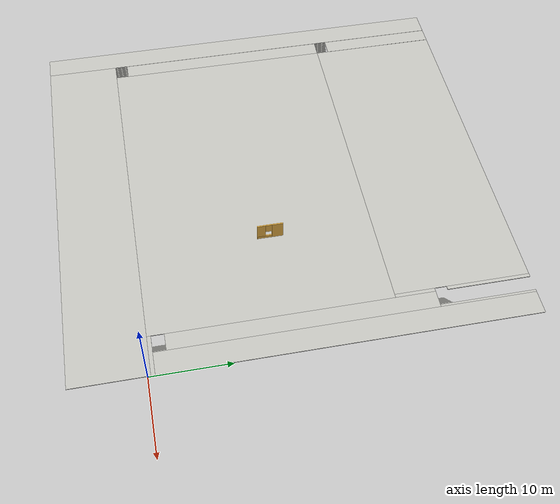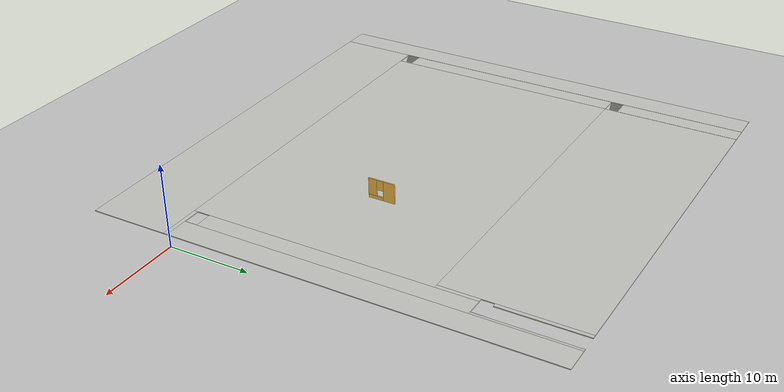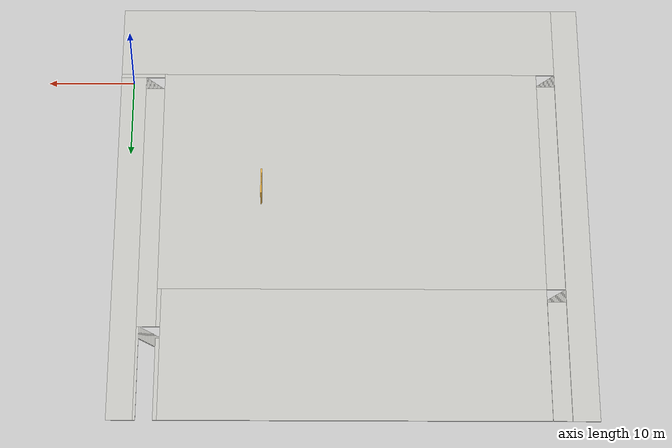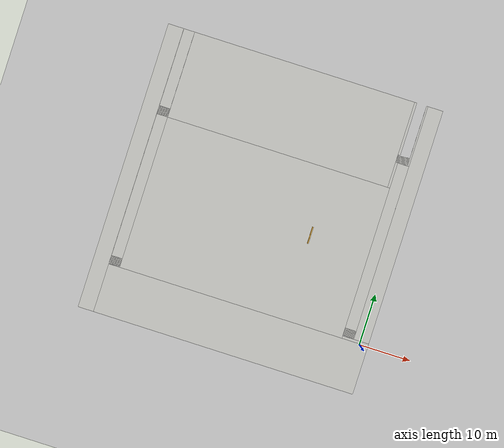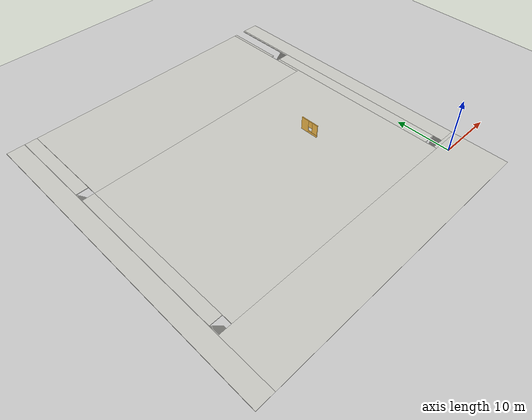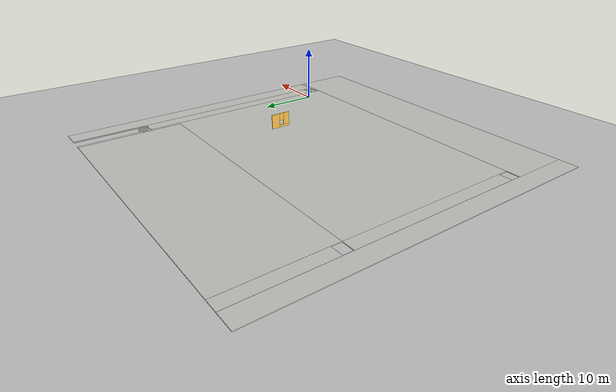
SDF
<sdf version="1.7">
 <world name="default">
  <model name="ground_plane">
   <static>1</static>
   <link name="link">
    <collision name="collision">
     <geometry><plane><normal>0 0 1</normal><size>100 100</size></plane></geometry>
     <surface>
      <contact><collide_bitmask>65535</collide_bitmask></contact>
      <friction><ode><mu>100</mu><mu2>50</mu2></ode></friction>
     </surface>
    </collision>
    <visual name="visual">
     <cast_shadows>0</cast_shadows>
     <geometry><plane><normal>0 0 1</normal><size>100 100</size></plane></geometry>
     <material>
      <script><uri>file://media/materials/scripts/gazebo.material</uri><name>Gazebo/Grey</name></script>
     </material>
    </visual>
   </link>
  </model>
  <model name="DepartmentBuilding">
   <pose>-25.6559 18.8293 0 0 -0 0</pose>
   <link name="Floor_2">
    <pose>-1e-06 -7.8e-05 2.5 0 -0 0</pose>
    <visual name="Floor_2_Visual_0">
     <pose>-25.4296 0 0.05 0 -0 0</pose>
     <geometry><box><size>3.02955 55.5283 0.1</size></box></geometry>
     <material>
      <script><uri>file://media/materials/scripts/gazebo.material</uri><name>Gazebo/CeilingTiled</name></script>
      <ambient>1 1 1 1</ambient>
     </material>
     <meta><layer>1</layer></meta>
    </visual>
    <collision name="Floor_2_Collision_0">
     <geometry><box><size>3.02955 55.5283 0.1</size></box></geometry>
     <pose>-25.4296 0 0.05 0 -0 0</pose>
    </collision>
    <visual name="Floor_2_Visual_1">
     <pose>1.51477 -23.0785 0.05 0 -0 0</pose>
     <geometry><box><size>50.8593 9.37122 0.1</size></box></geometry>
     <material>
      <script><uri>file://media/materials/scripts/gazebo.material</uri><name>Gazebo/CeilingTiled</name></script>
      <ambient>1 1 1 1</ambient>
     </material>
     <meta><layer>1</layer></meta>
    </visual>
    <collision name="Floor_2_Collision_1">
     <geometry><box><size>50.8593 9.37122 0.1</size></box></geometry>
     <pose>1.51477 -23.0785 0.05 0 -0 0</pose>
    </collision>
    <visual name="Floor_2_Visual_2">
     <pose>0.030895 -3.65943 0.05 0 -0 0</pose>
     <geometry><box><size>43.6115 29.467 0.1</size></box></geometry>
     <material>
      <script><uri>file://media/materials/scripts/gazebo.material</uri><name>Gazebo/CeilingTiled</name></script>
      <ambient>1 1 1 1</ambient>
     </material>
     <meta><layer>1</layer></meta>
    </visual>
    <collision name="Floor_2_Collision_2">
     <geometry><box><size>43.6115 29.467 0.1</size></box></geometry>
     <pose>0.030895 -3.65943 0.05 0 -0 0</pose>
    </collision>
    <visual name="Floor_2_Visual_3">
     <pose>24.3905 -18.149 0.05 0 -0 0</pose>
     <geometry><box><size>5.10775 0.487854 0.1</size></box></geometry>
     <material>
      <script><uri>file://media/materials/scripts/gazebo.material</uri><name>Gazebo/CeilingTiled</name></script>
      <ambient>1 1 1 1</ambient>
     </material>
     <meta><layer>1</layer></meta>
    </visual>
    <collision name="Floor_2_Collision_3">
     <geometry><box><size>5.10775 0.487854 0.1</size></box></geometry>
     <pose>24.3905 -18.149 0.05 0 -0 0</pose>
    </collision>
    <visual name="Floor_2_Visual_4">
     <pose>25.4813 4.92953 0.05 0 -0 0</pose>
     <geometry><box><size>2.9262 45.6692 0.1</size></box></geometry>
     <material>
      <script><uri>file://media/materials/scripts/gazebo.material</uri><name>Gazebo/CeilingTiled</name></script>
      <ambient>1 1 1 1</ambient>
     </material>
     <meta><layer>1</layer></meta>
    </visual>
    <collision name="Floor_2_Collision_4">
     <geometry><box><size>2.9262 45.6692 0.1</size></box></geometry>
     <pose>25.4813 4.92953 0.05 0 -0 0</pose>
    </collision>
    <visual name="Floor_2_Visual_5">
     <pose>-23.8968 5.51561 0.05 0 -0 0</pose>
     <geometry><box><size>0.036097 44.4971 0.1</size></box></geometry>
     <material>
      <script><uri>file://media/materials/scripts/gazebo.material</uri><name>Gazebo/CeilingTiled</name></script>
      <ambient>1 1 1 1</ambient>
     </material>
     <meta><layer>1</layer></meta>
    </visual>
    <collision name="Floor_2_Collision_5">
     <geometry><box><size>0.036097 44.4971 0.1</size></box></geometry>
     <pose>-23.8968 5.51561 0.05 0 -0 0</pose>
    </collision>
    <visual name="Floor_2_Visual_6">
     <pose>-22.8268 -2.82943 0.05 0 -0 0</pose>
     <geometry><box><size>2.1039 27.807 0.1</size></box></geometry>
     <material>
      <script><uri>file://media/materials/scripts/gazebo.material</uri><name>Gazebo/CeilingTiled</name></script>
      <ambient>1 1 1 1</ambient>
     </material>
     <meta><layer>1</layer></meta>
    </visual>
    <collision name="Floor_2_Collision_6">
     <geometry><box><size>2.1039 27.807 0.1</size></box></geometry>
     <pose>-22.8268 -2.82943 0.05 0 -0 0</pose>
    </collision>
    <visual name="Floor_2_Visual_7">
     <pose>22.9274 -0.181225 0.05 0 -0 0</pose>
     <geometry><box><size>2.18155 32.3374 0.1</size></box></geometry>
     <material>
      <script><uri>file://media/materials/scripts/gazebo.material</uri><name>Gazebo/CeilingTiled</name></script>
      <ambient>1 1 1 1</ambient>
     </material>
     <meta><layer>1</layer></meta>
    </visual>
    <collision name="Floor_2_Collision_7">
     <geometry><box><size>2.18155 32.3374 0.1</size></box></geometry>
     <pose>22.9274 -0.181225 0.05 0 -0 0</pose>
    </collision>
    <visual name="Floor_2_Visual_8">
     <pose>-0.185707 19.4191 0.05 0 -0 0</pose>
     <geometry><box><size>43.1392 16.6901 0.1</size></box></geometry>
     <material>
      <script><uri>file://media/materials/scripts/gazebo.material</uri><name>Gazebo/CeilingTiled</name></script>
      <ambient>1 1 1 1</ambient>
     </material>
     <meta><layer>1</layer></meta>
    </visual>
    <collision name="Floor_2_Collision_8">
     <geometry><box><size>43.1392 16.6901 0.1</size></box></geometry>
     <pose>-0.185707 19.4191 0.05 0 -0 0</pose>
    </collision>
    <visual name="Floor_2_Visual_9">
     <pose>21.6103 13.5308 0.05 0 -0 0</pose>
     <geometry><box><size>0.452741 4.91341 0.1</size></box></geometry>
     <material>
      <script><uri>file://media/materials/scripts/gazebo.material</uri><name>Gazebo/CeilingTiled</name></script>
      <ambient>1 1 1 1</ambient>
     </material>
     <meta><layer>1</layer></meta>
    </visual>
    <collision name="Floor_2_Collision_9">
     <geometry><box><size>0.452741 4.91341 0.1</size></box></geometry>
     <pose>21.6103 13.5308 0.05 0 -0 0</pose>
    </collision>
    <visual name="Floor_2_Visual_10">
     <pose>-22.8268 20.225 0.05 0 -0 0</pose>
     <geometry><box><size>2.1039 15.0783 0.1</size></box></geometry>
     <material>
      <script><uri>file://media/materials/scripts/gazebo.material</uri><name>Gazebo/CeilingTiled</name></script>
      <ambient>1 1 1 1</ambient>
     </material>
     <meta><layer>1</layer></meta>
    </visual>
    <collision name="Floor_2_Collision_10">
     <geometry><box><size>2.1039 15.0783 0.1</size></box></geometry>
     <pose>-22.8268 20.225 0.05 0 -0 0</pose>
    </collision>
    <visual name="Floor_2_Visual_11">
     <pose>23.8698 21.8758 0.05 0 -0 0</pose>
     <geometry><box><size>0.296725 11.7767 0.1</size></box></geometry>
     <material>
      <script><uri>file://media/materials/scripts/gazebo.material</uri><name>Gazebo/CeilingTiled</name></script>
      <ambient>1 1 1 1</ambient>
     </material>
     <meta><layer>1</layer></meta>
    </visual>
    <collision name="Floor_2_Collision_11">
     <geometry><box><size>0.296725 11.7767 0.1</size></box></geometry>
     <pose>23.8698 21.8758 0.05 0 -0 0</pose>
    </collision>
    <visual name="Floor_2_Visual_12">
     <pose>21.6103 22.6205 0.05 0 -0 0</pose>
     <geometry><box><size>0.452741 10.2872 0.1</size></box></geometry>
     <material>
      <script><uri>file://media/materials/scripts/gazebo.material</uri><name>Gazebo/CeilingTiled</name></script>
      <ambient>1 1 1 1</ambient>
     </material>
     <meta><layer>1</layer></meta>
    </visual>
    <collision name="Floor_2_Collision_12">
     <geometry><box><size>0.452741 10.2872 0.1</size></box></geometry>
     <pose>21.6103 22.6205 0.05 0 -0 0</pose>
    </collision>
   </link>
   <link name="Stairs_0">
    <visual name="Stairs_0_Visual_0">
     <pose>21.9094 -17.1276 0.083333 0 -0 1.5708</pose>
     <geometry><box><size>1.55513 0.145437 0.166667</size></box></geometry>
     <material>
      <script><uri>file://media/materials/scripts/gazebo.material</uri><name>Gazebo/CeilingTiled</name></script>
      <ambient>1 1 1 1</ambient>
     </material>
     <meta><layer>0</layer></meta>
    </visual>
    <collision name="Stairs_0_Collision_0">
     <geometry><box><size>1.55513 0.145437 0.166667</size></box></geometry>
     <pose>21.9094 -17.1276 0.083333 0 -0 1.5708</pose>
    </collision>
    <visual name="Stairs_0_Visual_1">
     <pose>22.0548 -17.1276 0.25 0 -0 1.5708</pose>
     <geometry><box><size>1.55513 0.145437 0.166667</size></box></geometry>
     <material>
      <script><uri>file://media/materials/scripts/gazebo.material</uri><name>Gazebo/CeilingTiled</name></script>
      <ambient>1 1 1 1</ambient>
     </material>
     <meta><layer>0</layer></meta>
    </visual>
    <collision name="Stairs_0_Collision_1">
     <geometry><box><size>1.55513 0.145437 0.166667</size></box></geometry>
     <pose>22.0548 -17.1276 0.25 0 -0 1.5708</pose>
    </collision>
    <visual name="Stairs_0_Visual_2">
     <pose>22.2002 -17.1276 0.416667 0 -0 1.5708</pose>
     <geometry><box><size>1.55513 0.145437 0.166667</size></box></geometry>
     <material>
      <script><uri>file://media/materials/scripts/gazebo.material</uri><name>Gazebo/CeilingTiled</name></script>
      <ambient>1 1 1 1</ambient>
     </material>
     <meta><layer>0</layer></meta>
    </visual>
    <collision name="Stairs_0_Collision_2">
     <geometry><box><size>1.55513 0.145437 0.166667</size></box></geometry>
     <pose>22.2002 -17.1276 0.416667 0 -0 1.5708</pose>
    </collision>
    <visual name="Stairs_0_Visual_3">
     <pose>22.3457 -17.1276 0.583333 0 -0 1.5708</pose>
     <geometry><box><size>1.55513 0.145437 0.166667</size></box></geometry>
     <material>
      <script><uri>file://media/materials/scripts/gazebo.material</uri><name>Gazebo/CeilingTiled</name></script>
      <ambient>1 1 1 1</ambient>
     </material>
     <meta><layer>0</layer></meta>
    </visual>
    <collision name="Stairs_0_Collision_3">
     <geometry><box><size>1.55513 0.145437 0.166667</size></box></geometry>
     <pose>22.3457 -17.1276 0.583333 0 -0 1.5708</pose>
    </collision>
    <visual name="Stairs_0_Visual_4">
     <pose>22.4911 -17.1276 0.75 0 -0 1.5708</pose>
     <geometry><box><size>1.55513 0.145437 0.166667</size></box></geometry>
     <material>
      <script><uri>file://media/materials/scripts/gazebo.material</uri><name>Gazebo/CeilingTiled</name></script>
      <ambient>1 1 1 1</ambient>
     </material>
     <meta><layer>0</layer></meta>
    </visual>
    <collision name="Stairs_0_Collision_4">
     <geometry><box><size>1.55513 0.145437 0.166667</size></box></geometry>
     <pose>22.4911 -17.1276 0.75 0 -0 1.5708</pose>
    </collision>
    <visual name="Stairs_0_Visual_5">
     <pose>22.6366 -17.1276 0.916667 0 -0 1.5708</pose>
     <geometry><box><size>1.55513 0.145437 0.166667</size></box></geometry>
     <material>
      <script><uri>file://media/materials/scripts/gazebo.material</uri><name>Gazebo/CeilingTiled</name></script>
      <ambient>1 1 1 1</ambient>
     </material>
     <meta><layer>0</layer></meta>
    </visual>
    <collision name="Stairs_0_Collision_5">
     <geometry><box><size>1.55513 0.145437 0.166667</size></box></geometry>
     <pose>22.6366 -17.1276 0.916667 0 -0 1.5708</pose>
    </collision>
    <visual name="Stairs_0_Visual_6">
     <pose>22.782 -17.1276 1.08333 0 -0 1.5708</pose>
     <geometry><box><size>1.55513 0.145437 0.166667</size></box></geometry>
     <material>
      <script><uri>file://media/materials/scripts/gazebo.material</uri><name>Gazebo/CeilingTiled</name></script>
      <ambient>1 1 1 1</ambient>
     </material>
     <meta><layer>0</layer></meta>
    </visual>
    <collision name="Stairs_0_Collision_6">
     <geometry><box><size>1.55513 0.145437 0.166667</size></box></geometry>
     <pose>22.782 -17.1276 1.08333 0 -0 1.5708</pose>
    </collision>
    <visual name="Stairs_0_Visual_7">
     <pose>22.9274 -17.1276 1.25 0 -0 1.5708</pose>
     <geometry><box><size>1.55513 0.145437 0.166667</size></box></geometry>
     <material>
      <script><uri>file://media/materials/scripts/gazebo.material</uri><name>Gazebo/CeilingTiled</name></script>
      <ambient>1 1 1 1</ambient>
     </material>
     <meta><layer>0</layer></meta>
    </visual>
    <collision name="Stairs_0_Collision_7">
     <geometry><box><size>1.55513 0.145437 0.166667</size></box></geometry>
     <pose>22.9274 -17.1276 1.25 0 -0 1.5708</pose>
    </collision>
    <visual name="Stairs_0_Visual_8">
     <pose>23.0729 -17.1276 1.41667 0 -0 1.5708</pose>
     <geometry><box><size>1.55513 0.145437 0.166667</size></box></geometry>
     <material>
      <script><uri>file://media/materials/scripts/gazebo.material</uri><name>Gazebo/CeilingTiled</name></script>
      <ambient>1 1 1 1</ambient>
     </material>
     <meta><layer>0</layer></meta>
    </visual>
    <collision name="Stairs_0_Collision_8">
     <geometry><box><size>1.55513 0.145437 0.166667</size></box></geometry>
     <pose>23.0729 -17.1276 1.41667 0 -0 1.5708</pose>
    </collision>
    <visual name="Stairs_0_Visual_9">
     <pose>23.2183 -17.1276 1.58333 0 -0 1.5708</pose>
     <geometry><box><size>1.55513 0.145437 0.166667</size></box></geometry>
     <material>
      <script><uri>file://media/materials/scripts/gazebo.material</uri><name>Gazebo/CeilingTiled</name></script>
      <ambient>1 1 1 1</ambient>
     </material>
     <meta><layer>0</layer></meta>
    </visual>
    <collision name="Stairs_0_Collision_9">
     <geometry><box><size>1.55513 0.145437 0.166667</size></box></geometry>
     <pose>23.2183 -17.1276 1.58333 0 -0 1.5708</pose>
    </collision>
    <visual name="Stairs_0_Visual_10">
     <pose>23.3637 -17.1276 1.75 0 -0 1.5708</pose>
     <geometry><box><size>1.55513 0.145437 0.166667</size></box></geometry>
     <material>
      <script><uri>file://media/materials/scripts/gazebo.material</uri><name>Gazebo/CeilingTiled</name></script>
      <ambient>1 1 1 1</ambient>
     </material>
     <meta><layer>0</layer></meta>
    </visual>
    <collision name="Stairs_0_Collision_10">
     <geometry><box><size>1.55513 0.145437 0.166667</size></box></geometry>
     <pose>23.3637 -17.1276 1.75 0 -0 1.5708</pose>
    </collision>
    <visual name="Stairs_0_Visual_11">
     <pose>23.5092 -17.1276 1.91667 0 -0 1.5708</pose>
     <geometry><box><size>1.55513 0.145437 0.166667</size></box></geometry>
     <material>
      <script><uri>file://media/materials/scripts/gazebo.material</uri><name>Gazebo/CeilingTiled</name></script>
      <ambient>1 1 1 1</ambient>
     </material>
     <meta><layer>0</layer></meta>
    </visual>
    <collision name="Stairs_0_Collision_11">
     <geometry><box><size>1.55513 0.145437 0.166667</size></box></geometry>
     <pose>23.5092 -17.1276 1.91667 0 -0 1.5708</pose>
    </collision>
    <visual name="Stairs_0_Visual_12">
     <pose>23.6546 -17.1276 2.08333 0 -0 1.5708</pose>
     <geometry><box><size>1.55513 0.145437 0.166667</size></box></geometry>
     <material>
      <script><uri>file://media/materials/scripts/gazebo.material</uri><name>Gazebo/CeilingTiled</name></script>
      <ambient>1 1 1 1</ambient>
     </material>
     <meta><layer>0</layer></meta>
    </visual>
    <collision name="Stairs_0_Collision_12">
     <geometry><box><size>1.55513 0.145437 0.166667</size></box></geometry>
     <pose>23.6546 -17.1276 2.08333 0 -0 1.5708</pose>
    </collision>
    <visual name="Stairs_0_Visual_13">
     <pose>23.8001 -17.1276 2.25 0 -0 1.5708</pose>
     <geometry><box><size>1.55513 0.145437 0.166667</size></box></geometry>
     <material>
      <script><uri>file://media/materials/scripts/gazebo.material</uri><name>Gazebo/CeilingTiled</name></script>
      <ambient>1 1 1 1</ambient>
     </material>
     <meta><layer>0</layer></meta>
    </visual>
    <collision name="Stairs_0_Collision_13">
     <geometry><box><size>1.55513 0.145437 0.166667</size></box></geometry>
     <pose>23.8001 -17.1276 2.25 0 -0 1.5708</pose>
    </collision>
    <visual name="Stairs_0_Visual_14">
     <pose>23.9455 -17.1276 2.41667 0 -0 1.5708</pose>
     <geometry><box><size>1.55513 0.145437 0.166667</size></box></geometry>
     <material>
      <script><uri>file://media/materials/scripts/gazebo.material</uri><name>Gazebo/CeilingTiled</name></script>
      <ambient>1 1 1 1</ambient>
     </material>
     <meta><layer>0</layer></meta>
    </visual>
    <collision name="Stairs_0_Collision_14">
     <geometry><box><size>1.55513 0.145437 0.166667</size></box></geometry>
     <pose>23.9455 -17.1276 2.41667 0 -0 1.5708</pose>
    </collision>
   </link>
   <link name="Stairs_1">
    <visual name="Stairs_1_Visual_0">
     <pose>21.4618 16.7321 0.083333 0 -0 1.5708</pose>
     <geometry><box><size>1.48944 0.155838 0.166667</size></box></geometry>
     <material>
      <script><uri>file://media/materials/scripts/gazebo.material</uri><name>Gazebo/CeilingTiled</name></script>
      <ambient>1 1 1 1</ambient>
     </material>
     <meta><layer>0</layer></meta>
    </visual>
    <collision name="Stairs_1_Collision_0">
     <geometry><box><size>1.48944 0.155838 0.166667</size></box></geometry>
     <pose>21.4618 16.7321 0.083333 0 -0 1.5708</pose>
    </collision>
    <visual name="Stairs_1_Visual_1">
     <pose>21.6177 16.7321 0.25 0 -0 1.5708</pose>
     <geometry><box><size>1.48944 0.155838 0.166667</size></box></geometry>
     <material>
      <script><uri>file://media/materials/scripts/gazebo.material</uri><name>Gazebo/CeilingTiled</name></script>
      <ambient>1 1 1 1</ambient>
     </material>
     <meta><layer>0</layer></meta>
    </visual>
    <collision name="Stairs_1_Collision_1">
     <geometry><box><size>1.48944 0.155838 0.166667</size></box></geometry>
     <pose>21.6177 16.7321 0.25 0 -0 1.5708</pose>
    </collision>
    <visual name="Stairs_1_Visual_2">
     <pose>21.7735 16.7321 0.416667 0 -0 1.5708</pose>
     <geometry><box><size>1.48944 0.155838 0.166667</size></box></geometry>
     <material>
      <script><uri>file://media/materials/scripts/gazebo.material</uri><name>Gazebo/CeilingTiled</name></script>
      <ambient>1 1 1 1</ambient>
     </material>
     <meta><layer>0</layer></meta>
    </visual>
    <collision name="Stairs_1_Collision_2">
     <geometry><box><size>1.48944 0.155838 0.166667</size></box></geometry>
     <pose>21.7735 16.7321 0.416667 0 -0 1.5708</pose>
    </collision>
    <visual name="Stairs_1_Visual_3">
     <pose>21.9293 16.7321 0.583333 0 -0 1.5708</pose>
     <geometry><box><size>1.48944 0.155838 0.166667</size></box></geometry>
     <material>
      <script><uri>file://media/materials/scripts/gazebo.material</uri><name>Gazebo/CeilingTiled</name></script>
      <ambient>1 1 1 1</ambient>
     </material>
     <meta><layer>0</layer></meta>
    </visual>
    <collision name="Stairs_1_Collision_3">
     <geometry><box><size>1.48944 0.155838 0.166667</size></box></geometry>
     <pose>21.9293 16.7321 0.583333 0 -0 1.5708</pose>
    </collision>
    <visual name="Stairs_1_Visual_4">
     <pose>22.0852 16.7321 0.75 0 -0 1.5708</pose>
     <geometry><box><size>1.48944 0.155838 0.166667</size></box></geometry>
     <material>
      <script><uri>file://media/materials/scripts/gazebo.material</uri><name>Gazebo/CeilingTiled</name></script>
      <ambient>1 1 1 1</ambient>
     </material>
     <meta><layer>0</layer></meta>
    </visual>
    <collision name="Stairs_1_Collision_4">
     <geometry><box><size>1.48944 0.155838 0.166667</size></box></geometry>
     <pose>22.0852 16.7321 0.75 0 -0 1.5708</pose>
    </collision>
    <visual name="Stairs_1_Visual_5">
     <pose>22.241 16.7321 0.916667 0 -0 1.5708</pose>
     <geometry><box><size>1.48944 0.155838 0.166667</size></box></geometry>
     <material>
      <script><uri>file://media/materials/scripts/gazebo.material</uri><name>Gazebo/CeilingTiled</name></script>
      <ambient>1 1 1 1</ambient>
     </material>
     <meta><layer>0</layer></meta>
    </visual>
    <collision name="Stairs_1_Collision_5">
     <geometry><box><size>1.48944 0.155838 0.166667</size></box></geometry>
     <pose>22.241 16.7321 0.916667 0 -0 1.5708</pose>
    </collision>
    <visual name="Stairs_1_Visual_6">
     <pose>22.3969 16.7321 1.08333 0 -0 1.5708</pose>
     <geometry><box><size>1.48944 0.155838 0.166667</size></box></geometry>
     <material>
      <script><uri>file://media/materials/scripts/gazebo.material</uri><name>Gazebo/CeilingTiled</name></script>
      <ambient>1 1 1 1</ambient>
     </material>
     <meta><layer>0</layer></meta>
    </visual>
    <collision name="Stairs_1_Collision_6">
     <geometry><box><size>1.48944 0.155838 0.166667</size></box></geometry>
     <pose>22.3969 16.7321 1.08333 0 -0 1.5708</pose>
    </collision>
    <visual name="Stairs_1_Visual_7">
     <pose>22.5527 16.7321 1.25 0 -0 1.5708</pose>
     <geometry><box><size>1.48944 0.155838 0.166667</size></box></geometry>
     <material>
      <script><uri>file://media/materials/scripts/gazebo.material</uri><name>Gazebo/CeilingTiled</name></script>
      <ambient>1 1 1 1</ambient>
     </material>
     <meta><layer>0</layer></meta>
    </visual>
    <collision name="Stairs_1_Collision_7">
     <geometry><box><size>1.48944 0.155838 0.166667</size></box></geometry>
     <pose>22.5527 16.7321 1.25 0 -0 1.5708</pose>
    </collision>
    <visual name="Stairs_1_Visual_8">
     <pose>22.7085 16.7321 1.41667 0 -0 1.5708</pose>
     <geometry><box><size>1.48944 0.155838 0.166667</size></box></geometry>
     <material>
      <script><uri>file://media/materials/scripts/gazebo.material</uri><name>Gazebo/CeilingTiled</name></script>
      <ambient>1 1 1 1</ambient>
     </material>
     <meta><layer>0</layer></meta>
    </visual>
    <collision name="Stairs_1_Collision_8">
     <geometry><box><size>1.48944 0.155838 0.166667</size></box></geometry>
     <pose>22.7085 16.7321 1.41667 0 -0 1.5708</pose>
    </collision>
    <visual name="Stairs_1_Visual_9">
     <pose>22.8644 16.7321 1.58333 0 -0 1.5708</pose>
     <geometry><box><size>1.48944 0.155838 0.166667</size></box></geometry>
     <material>
      <script><uri>file://media/materials/scripts/gazebo.material</uri><name>Gazebo/CeilingTiled</name></script>
      <ambient>1 1 1 1</ambient>
     </material>
     <meta><layer>0</layer></meta>
    </visual>
    <collision name="Stairs_1_Collision_9">
     <geometry><box><size>1.48944 0.155838 0.166667</size></box></geometry>
     <pose>22.8644 16.7321 1.58333 0 -0 1.5708</pose>
    </collision>
    <visual name="Stairs_1_Visual_10">
     <pose>23.0202 16.7321 1.75 0 -0 1.5708</pose>
     <geometry><box><size>1.48944 0.155838 0.166667</size></box></geometry>
     <material>
      <script><uri>file://media/materials/scripts/gazebo.material</uri><name>Gazebo/CeilingTiled</name></script>
      <ambient>1 1 1 1</ambient>
     </material>
     <meta><layer>0</layer></meta>
    </visual>
    <collision name="Stairs_1_Collision_10">
     <geometry><box><size>1.48944 0.155838 0.166667</size></box></geometry>
     <pose>23.0202 16.7321 1.75 0 -0 1.5708</pose>
    </collision>
    <visual name="Stairs_1_Visual_11">
     <pose>23.1761 16.7321 1.91667 0 -0 1.5708</pose>
     <geometry><box><size>1.48944 0.155838 0.166667</size></box></geometry>
     <material>
      <script><uri>file://media/materials/scripts/gazebo.material</uri><name>Gazebo/CeilingTiled</name></script>
      <ambient>1 1 1 1</ambient>
     </material>
     <meta><layer>0</layer></meta>
    </visual>
    <collision name="Stairs_1_Collision_11">
     <geometry><box><size>1.48944 0.155838 0.166667</size></box></geometry>
     <pose>23.1761 16.7321 1.91667 0 -0 1.5708</pose>
    </collision>
    <visual name="Stairs_1_Visual_12">
     <pose>23.3319 16.7321 2.08333 0 -0 1.5708</pose>
     <geometry><box><size>1.48944 0.155838 0.166667</size></box></geometry>
     <material>
      <script><uri>file://media/materials/scripts/gazebo.material</uri><name>Gazebo/CeilingTiled</name></script>
      <ambient>1 1 1 1</ambient>
     </material>
     <meta><layer>0</layer></meta>
    </visual>
    <collision name="Stairs_1_Collision_12">
     <geometry><box><size>1.48944 0.155838 0.166667</size></box></geometry>
     <pose>23.3319 16.7321 2.08333 0 -0 1.5708</pose>
    </collision>
    <visual name="Stairs_1_Visual_13">
     <pose>23.4877 16.7321 2.25 0 -0 1.5708</pose>
     <geometry><box><size>1.48944 0.155838 0.166667</size></box></geometry>
     <material>
      <script><uri>file://media/materials/scripts/gazebo.material</uri><name>Gazebo/CeilingTiled</name></script>
      <ambient>1 1 1 1</ambient>
     </material>
     <meta><layer>0</layer></meta>
    </visual>
    <collision name="Stairs_1_Collision_13">
     <geometry><box><size>1.48944 0.155838 0.166667</size></box></geometry>
     <pose>23.4877 16.7321 2.25 0 -0 1.5708</pose>
    </collision>
    <visual name="Stairs_1_Visual_14">
     <pose>23.6436 16.7321 2.41667 0 -0 1.5708</pose>
     <geometry><box><size>1.48944 0.155838 0.166667</size></box></geometry>
     <material>
      <script><uri>file://media/materials/scripts/gazebo.material</uri><name>Gazebo/CeilingTiled</name></script>
      <ambient>1 1 1 1</ambient>
     </material>
     <meta><layer>0</layer></meta>
    </visual>
    <collision name="Stairs_1_Collision_14">
     <geometry><box><size>1.48944 0.155838 0.166667</size></box></geometry>
     <pose>23.6436 16.7321 2.41667 0 -0 1.5708</pose>
    </collision>
   </link>
   <link name="Stairs_2">
    <visual name="Stairs_2_Visual_0">
     <pose>-21.8261 11.8799 0.083333 0 -0 -1.5708</pose>
     <geometry><box><size>1.6118 0.141563 0.166667</size></box></geometry>
     <material>
      <script><uri>file://media/materials/scripts/gazebo.material</uri><name>Gazebo/CeilingTiled</name></script>
      <ambient>1 1 1 1</ambient>
     </material>
     <meta><layer>0</layer></meta>
    </visual>
    <collision name="Stairs_2_Collision_0">
     <geometry><box><size>1.6118 0.141563 0.166667</size></box></geometry>
     <pose>-21.8261 11.8799 0.083333 0 -0 -1.5708</pose>
    </collision>
    <visual name="Stairs_2_Visual_1">
     <pose>-21.9677 11.8799 0.25 0 -0 -1.5708</pose>
     <geometry><box><size>1.6118 0.141563 0.166667</size></box></geometry>
     <material>
      <script><uri>file://media/materials/scripts/gazebo.material</uri><name>Gazebo/CeilingTiled</name></script>
      <ambient>1 1 1 1</ambient>
     </material>
     <meta><layer>0</layer></meta>
    </visual>
    <collision name="Stairs_2_Collision_1">
     <geometry><box><size>1.6118 0.141563 0.166667</size></box></geometry>
     <pose>-21.9677 11.8799 0.25 0 -0 -1.5708</pose>
    </collision>
    <visual name="Stairs_2_Visual_2">
     <pose>-22.1092 11.8799 0.416667 0 -0 -1.5708</pose>
     <geometry><box><size>1.6118 0.141563 0.166667</size></box></geometry>
     <material>
      <script><uri>file://media/materials/scripts/gazebo.material</uri><name>Gazebo/CeilingTiled</name></script>
      <ambient>1 1 1 1</ambient>
     </material>
     <meta><layer>0</layer></meta>
    </visual>
    <collision name="Stairs_2_Collision_2">
     <geometry><box><size>1.6118 0.141563 0.166667</size></box></geometry>
     <pose>-22.1092 11.8799 0.416667 0 -0 -1.5708</pose>
    </collision>
    <visual name="Stairs_2_Visual_3">
     <pose>-22.2508 11.8799 0.583333 0 -0 -1.5708</pose>
     <geometry><box><size>1.6118 0.141563 0.166667</size></box></geometry>
     <material>
      <script><uri>file://media/materials/scripts/gazebo.material</uri><name>Gazebo/CeilingTiled</name></script>
      <ambient>1 1 1 1</ambient>
     </material>
     <meta><layer>0</layer></meta>
    </visual>
    <collision name="Stairs_2_Collision_3">
     <geometry><box><size>1.6118 0.141563 0.166667</size></box></geometry>
     <pose>-22.2508 11.8799 0.583333 0 -0 -1.5708</pose>
    </collision>
    <visual name="Stairs_2_Visual_4">
     <pose>-22.3924 11.8799 0.75 0 -0 -1.5708</pose>
     <geometry><box><size>1.6118 0.141563 0.166667</size></box></geometry>
     <material>
      <script><uri>file://media/materials/scripts/gazebo.material</uri><name>Gazebo/CeilingTiled</name></script>
      <ambient>1 1 1 1</ambient>
     </material>
     <meta><layer>0</layer></meta>
    </visual>
    <collision name="Stairs_2_Collision_4">
     <geometry><box><size>1.6118 0.141563 0.166667</size></box></geometry>
     <pose>-22.3924 11.8799 0.75 0 -0 -1.5708</pose>
    </collision>
    <visual name="Stairs_2_Visual_5">
     <pose>-22.5339 11.8799 0.916667 0 -0 -1.5708</pose>
     <geometry><box><size>1.6118 0.141563 0.166667</size></box></geometry>
     <material>
      <script><uri>file://media/materials/scripts/gazebo.material</uri><name>Gazebo/CeilingTiled</name></script>
      <ambient>1 1 1 1</ambient>
     </material>
     <meta><layer>0</layer></meta>
    </visual>
    <collision name="Stairs_2_Collision_5">
     <geometry><box><size>1.6118 0.141563 0.166667</size></box></geometry>
     <pose>-22.5339 11.8799 0.916667 0 -0 -1.5708</pose>
    </collision>
    <visual name="Stairs_2_Visual_6">
     <pose>-22.6755 11.8799 1.08333 0 -0 -1.5708</pose>
     <geometry><box><size>1.6118 0.141563 0.166667</size></box></geometry>
     <material>
      <script><uri>file://media/materials/scripts/gazebo.material</uri><name>Gazebo/CeilingTiled</name></script>
      <ambient>1 1 1 1</ambient>
     </material>
     <meta><layer>0</layer></meta>
    </visual>
    <collision name="Stairs_2_Collision_6">
     <geometry><box><size>1.6118 0.141563 0.166667</size></box></geometry>
     <pose>-22.6755 11.8799 1.08333 0 -0 -1.5708</pose>
    </collision>
    <visual name="Stairs_2_Visual_7">
     <pose>-22.817 11.8799 1.25 0 -0 -1.5708</pose>
     <geometry><box><size>1.6118 0.141563 0.166667</size></box></geometry>
     <material>
      <script><uri>file://media/materials/scripts/gazebo.material</uri><name>Gazebo/CeilingTiled</name></script>
      <ambient>1 1 1 1</ambient>
     </material>
     <meta><layer>0</layer></meta>
    </visual>
    <collision name="Stairs_2_Collision_7">
     <geometry><box><size>1.6118 0.141563 0.166667</size></box></geometry>
     <pose>-22.817 11.8799 1.25 0 -0 -1.5708</pose>
    </collision>
    <visual name="Stairs_2_Visual_8">
     <pose>-22.9586 11.8799 1.41667 0 -0 -1.5708</pose>
     <geometry><box><size>1.6118 0.141563 0.166667</size></box></geometry>
     <material>
      <script><uri>file://media/materials/scripts/gazebo.material</uri><name>Gazebo/CeilingTiled</name></script>
      <ambient>1 1 1 1</ambient>
     </material>
     <meta><layer>0</layer></meta>
    </visual>
    <collision name="Stairs_2_Collision_8">
     <geometry><box><size>1.6118 0.141563 0.166667</size></box></geometry>
     <pose>-22.9586 11.8799 1.41667 0 -0 -1.5708</pose>
    </collision>
    <visual name="Stairs_2_Visual_9">
     <pose>-23.1002 11.8799 1.58333 0 -0 -1.5708</pose>
     <geometry><box><size>1.6118 0.141563 0.166667</size></box></geometry>
     <material>
      <script><uri>file://media/materials/scripts/gazebo.material</uri><name>Gazebo/CeilingTiled</name></script>
      <ambient>1 1 1 1</ambient>
     </material>
     <meta><layer>0</layer></meta>
    </visual>
    <collision name="Stairs_2_Collision_9">
     <geometry><box><size>1.6118 0.141563 0.166667</size></box></geometry>
     <pose>-23.1002 11.8799 1.58333 0 -0 -1.5708</pose>
    </collision>
    <visual name="Stairs_2_Visual_10">
     <pose>-23.2417 11.8799 1.75 0 -0 -1.5708</pose>
     <geometry><box><size>1.6118 0.141563 0.166667</size></box></geometry>
     <material>
      <script><uri>file://media/materials/scripts/gazebo.material</uri><name>Gazebo/CeilingTiled</name></script>
      <ambient>1 1 1 1</ambient>
     </material>
     <meta><layer>0</layer></meta>
    </visual>
    <collision name="Stairs_2_Collision_10">
     <geometry><box><size>1.6118 0.141563 0.166667</size></box></geometry>
     <pose>-23.2417 11.8799 1.75 0 -0 -1.5708</pose>
    </collision>
    <visual name="Stairs_2_Visual_11">
     <pose>-23.3833 11.8799 1.91667 0 -0 -1.5708</pose>
     <geometry><box><size>1.6118 0.141563 0.166667</size></box></geometry>
     <material>
      <script><uri>file://media/materials/scripts/gazebo.material</uri><name>Gazebo/CeilingTiled</name></script>
      <ambient>1 1 1 1</ambient>
     </material>
     <meta><layer>0</layer></meta>
    </visual>
    <collision name="Stairs_2_Collision_11">
     <geometry><box><size>1.6118 0.141563 0.166667</size></box></geometry>
     <pose>-23.3833 11.8799 1.91667 0 -0 -1.5708</pose>
    </collision>
    <visual name="Stairs_2_Visual_12">
     <pose>-23.5249 11.8799 2.08333 0 -0 -1.5708</pose>
     <geometry><box><size>1.6118 0.141563 0.166667</size></box></geometry>
     <material>
      <script><uri>file://media/materials/scripts/gazebo.material</uri><name>Gazebo/CeilingTiled</name></script>
      <ambient>1 1 1 1</ambient>
     </material>
     <meta><layer>0</layer></meta>
    </visual>
    <collision name="Stairs_2_Collision_12">
     <geometry><box><size>1.6118 0.141563 0.166667</size></box></geometry>
     <pose>-23.5249 11.8799 2.08333 0 -0 -1.5708</pose>
    </collision>
    <visual name="Stairs_2_Visual_13">
     <pose>-23.6664 11.8799 2.25 0 -0 -1.5708</pose>
     <geometry><box><size>1.6118 0.141563 0.166667</size></box></geometry>
     <material>
      <script><uri>file://media/materials/scripts/gazebo.material</uri><name>Gazebo/CeilingTiled</name></script>
      <ambient>1 1 1 1</ambient>
     </material>
     <meta><layer>0</layer></meta>
    </visual>
    <collision name="Stairs_2_Collision_13">
     <geometry><box><size>1.6118 0.141563 0.166667</size></box></geometry>
     <pose>-23.6664 11.8799 2.25 0 -0 -1.5708</pose>
    </collision>
    <visual name="Stairs_2_Visual_14">
     <pose>-23.808 11.8799 2.41667 0 -0 -1.5708</pose>
     <geometry><box><size>1.6118 0.141563 0.166667</size></box></geometry>
     <material>
      <script><uri>file://media/materials/scripts/gazebo.material</uri><name>Gazebo/CeilingTiled</name></script>
      <ambient>1 1 1 1</ambient>
     </material>
     <meta><layer>0</layer></meta>
    </visual>
    <collision name="Stairs_2_Collision_14">
     <geometry><box><size>1.6118 0.141563 0.166667</size></box></geometry>
     <pose>-23.808 11.8799 2.41667 0 -0 -1.5708</pose>
    </collision>
   </link>
   <link name="Stairs_5">
    <visual name="Stairs_5_Visual_0">
     <pose>-21.8462 -17.563 0.083333 0 0 -1.5708</pose>
     <geometry><box><size>1.66 0.142667 0.166667</size></box></geometry>
     <material>
      <script><uri>file://media/materials/scripts/gazebo.material</uri><name>Gazebo/CeilingTiled</name></script>
      <ambient>1 1 1 1</ambient>
     </material>
     <meta><layer>0</layer></meta>
    </visual>
    <collision name="Stairs_5_Collision_0">
     <geometry><box><size>1.66 0.142667 0.166667</size></box></geometry>
     <pose>-21.8462 -17.563 0.083333 0 0 -1.5708</pose>
    </collision>
    <visual name="Stairs_5_Visual_1">
     <pose>-21.9889 -17.563 0.25 0 0 -1.5708</pose>
     <geometry><box><size>1.66 0.142667 0.166667</size></box></geometry>
     <material>
      <script><uri>file://media/materials/scripts/gazebo.material</uri><name>Gazebo/CeilingTiled</name></script>
      <ambient>1 1 1 1</ambient>
     </material>
     <meta><layer>0</layer></meta>
    </visual>
    <collision name="Stairs_5_Collision_1">
     <geometry><box><size>1.66 0.142667 0.166667</size></box></geometry>
     <pose>-21.9889 -17.563 0.25 0 0 -1.5708</pose>
    </collision>
    <visual name="Stairs_5_Visual_2">
     <pose>-22.1315 -17.563 0.416667 0 0 -1.5708</pose>
     <geometry><box><size>1.66 0.142667 0.166667</size></box></geometry>
     <material>
      <script><uri>file://media/materials/scripts/gazebo.material</uri><name>Gazebo/CeilingTiled</name></script>
      <ambient>1 1 1 1</ambient>
     </material>
     <meta><layer>0</layer></meta>
    </visual>
    <collision name="Stairs_5_Collision_2">
     <geometry><box><size>1.66 0.142667 0.166667</size></box></geometry>
     <pose>-22.1315 -17.563 0.416667 0 0 -1.5708</pose>
    </collision>
    <visual name="Stairs_5_Visual_3">
     <pose>-22.2742 -17.563 0.583333 0 0 -1.5708</pose>
     <geometry><box><size>1.66 0.142667 0.166667</size></box></geometry>
     <material>
      <script><uri>file://media/materials/scripts/gazebo.material</uri><name>Gazebo/CeilingTiled</name></script>
      <ambient>1 1 1 1</ambient>
     </material>
     <meta><layer>0</layer></meta>
    </visual>
    <collision name="Stairs_5_Collision_3">
     <geometry><box><size>1.66 0.142667 0.166667</size></box></geometry>
     <pose>-22.2742 -17.563 0.583333 0 0 -1.5708</pose>
    </collision>
    <visual name="Stairs_5_Visual_4">
     <pose>-22.4169 -17.563 0.75 0 0 -1.5708</pose>
     <geometry><box><size>1.66 0.142667 0.166667</size></box></geometry>
     <material>
      <script><uri>file://media/materials/scripts/gazebo.material</uri><name>Gazebo/CeilingTiled</name></script>
      <ambient>1 1 1 1</ambient>
     </material>
     <meta><layer>0</layer></meta>
    </visual>
    <collision name="Stairs_5_Collision_4">
     <geometry><box><size>1.66 0.142667 0.166667</size></box></geometry>
     <pose>-22.4169 -17.563 0.75 0 0 -1.5708</pose>
    </collision>
    <visual name="Stairs_5_Visual_5">
     <pose>-22.5595 -17.563 0.916667 0 0 -1.5708</pose>
     <geometry><box><size>1.66 0.142667 0.166667</size></box></geometry>
     <material>
      <script><uri>file://media/materials/scripts/gazebo.material</uri><name>Gazebo/CeilingTiled</name></script>
      <ambient>1 1 1 1</ambient>
     </material>
     <meta><layer>0</layer></meta>
    </visual>
    <collision name="Stairs_5_Collision_5">
     <geometry><box><size>1.66 0.142667 0.166667</size></box></geometry>
     <pose>-22.5595 -17.563 0.916667 0 0 -1.5708</pose>
    </collision>
    <visual name="Stairs_5_Visual_6">
     <pose>-22.7022 -17.563 1.08333 0 0 -1.5708</pose>
     <geometry><box><size>1.66 0.142667 0.166667</size></box></geometry>
     <material>
      <script><uri>file://media/materials/scripts/gazebo.material</uri><name>Gazebo/CeilingTiled</name></script>
      <ambient>1 1 1 1</ambient>
     </material>
     <meta><layer>0</layer></meta>
    </visual>
    <collision name="Stairs_5_Collision_6">
     <geometry><box><size>1.66 0.142667 0.166667</size></box></geometry>
     <pose>-22.7022 -17.563 1.08333 0 0 -1.5708</pose>
    </collision>
    <visual name="Stairs_5_Visual_7">
     <pose>-22.8449 -17.563 1.25 0 0 -1.5708</pose>
     <geometry><box><size>1.66 0.142667 0.166667</size></box></geometry>
     <material>
      <script><uri>file://media/materials/scripts/gazebo.material</uri><name>Gazebo/CeilingTiled</name></script>
      <ambient>1 1 1 1</ambient>
     </material>
     <meta><layer>0</layer></meta>
    </visual>
    <collision name="Stairs_5_Collision_7">
     <geometry><box><size>1.66 0.142667 0.166667</size></box></geometry>
     <pose>-22.8449 -17.563 1.25 0 0 -1.5708</pose>
    </collision>
    <visual name="Stairs_5_Visual_8">
     <pose>-22.9875 -17.563 1.41667 0 0 -1.5708</pose>
     <geometry><box><size>1.66 0.142667 0.166667</size></box></geometry>
     <material>
      <script><uri>file://media/materials/scripts/gazebo.material</uri><name>Gazebo/CeilingTiled</name></script>
      <ambient>1 1 1 1</ambient>
     </material>
     <meta><layer>0</layer></meta>
    </visual>
    <collision name="Stairs_5_Collision_8">
     <geometry><box><size>1.66 0.142667 0.166667</size></box></geometry>
     <pose>-22.9875 -17.563 1.41667 0 0 -1.5708</pose>
    </collision>
    <visual name="Stairs_5_Visual_9">
     <pose>-23.1302 -17.563 1.58333 0 0 -1.5708</pose>
     <geometry><box><size>1.66 0.142667 0.166667</size></box></geometry>
     <material>
      <script><uri>file://media/materials/scripts/gazebo.material</uri><name>Gazebo/CeilingTiled</name></script>
      <ambient>1 1 1 1</ambient>
     </material>
     <meta><layer>0</layer></meta>
    </visual>
    <collision name="Stairs_5_Collision_9">
     <geometry><box><size>1.66 0.142667 0.166667</size></box></geometry>
     <pose>-23.1302 -17.563 1.58333 0 0 -1.5708</pose>
    </collision>
    <visual name="Stairs_5_Visual_10">
     <pose>-23.2729 -17.563 1.75 0 0 -1.5708</pose>
     <geometry><box><size>1.66 0.142667 0.166667</size></box></geometry>
     <material>
      <script><uri>file://media/materials/scripts/gazebo.material</uri><name>Gazebo/CeilingTiled</name></script>
      <ambient>1 1 1 1</ambient>
     </material>
     <meta><layer>0</layer></meta>
    </visual>
    <collision name="Stairs_5_Collision_10">
     <geometry><box><size>1.66 0.142667 0.166667</size></box></geometry>
     <pose>-23.2729 -17.563 1.75 0 0 -1.5708</pose>
    </collision>
    <visual name="Stairs_5_Visual_11">
     <pose>-23.4155 -17.563 1.91667 0 0 -1.5708</pose>
     <geometry><box><size>1.66 0.142667 0.166667</size></box></geometry>
     <material>
      <script><uri>file://media/materials/scripts/gazebo.material</uri><name>Gazebo/CeilingTiled</name></script>
      <ambient>1 1 1 1</ambient>
     </material>
     <meta><layer>0</layer></meta>
    </visual>
    <collision name="Stairs_5_Collision_11">
     <geometry><box><size>1.66 0.142667 0.166667</size></box></geometry>
     <pose>-23.4155 -17.563 1.91667 0 0 -1.5708</pose>
    </collision>
    <visual name="Stairs_5_Visual_12">
     <pose>-23.5582 -17.563 2.08333 0 0 -1.5708</pose>
     <geometry><box><size>1.66 0.142667 0.166667</size></box></geometry>
     <material>
      <script><uri>file://media/materials/scripts/gazebo.material</uri><name>Gazebo/CeilingTiled</name></script>
      <ambient>1 1 1 1</ambient>
     </material>
     <meta><layer>0</layer></meta>
    </visual>
    <collision name="Stairs_5_Collision_12">
     <geometry><box><size>1.66 0.142667 0.166667</size></box></geometry>
     <pose>-23.5582 -17.563 2.08333 0 0 -1.5708</pose>
    </collision>
    <visual name="Stairs_5_Visual_13">
     <pose>-23.7009 -17.563 2.25 0 0 -1.5708</pose>
     <geometry><box><size>1.66 0.142667 0.166667</size></box></geometry>
     <material>
      <script><uri>file://media/materials/scripts/gazebo.material</uri><name>Gazebo/CeilingTiled</name></script>
      <ambient>1 1 1 1</ambient>
     </material>
     <meta><layer>0</layer></meta>
    </visual>
    <collision name="Stairs_5_Collision_13">
     <geometry><box><size>1.66 0.142667 0.166667</size></box></geometry>
     <pose>-23.7009 -17.563 2.25 0 0 -1.5708</pose>
    </collision>
    <visual name="Stairs_5_Visual_14">
     <pose>-23.8435 -17.563 2.41667 0 0 -1.5708</pose>
     <geometry><box><size>1.66 0.142667 0.166667</size></box></geometry>
     <material>
      <script><uri>file://media/materials/scripts/gazebo.material</uri><name>Gazebo/CeilingTiled</name></script>
      <ambient>1 1 1 1</ambient>
     </material>
     <meta><layer>0</layer></meta>
    </visual>
    <collision name="Stairs_5_Collision_14">
     <geometry><box><size>1.66 0.142667 0.166667</size></box></geometry>
     <pose>-23.8435 -17.563 2.41667 0 0 -1.5708</pose>
    </collision>
   </link>
   <link name="Wall_202">
    <pose>10.3194 -1.86094 0 0 -0 -1.5708</pose>
    <visual name="Wall_202_Visual_0">
     <pose>-0.948649 0 1.25 0 -0 0</pose>
     <geometry><box><size>1.3527 0.15 2.5</size></box></geometry>
     <material>
      <script><uri>file://media/materials/scripts/gazebo.material</uri><name>Gazebo/Grey</name></script>
      <ambient>1 0.764706 0.305882 1</ambient>
     </material>
     <meta><layer>0</layer></meta>
    </visual>
    <collision name="Wall_202_Collision_0">
     <geometry><box><size>1.3527 0.15 2.5</size></box></geometry>
     <pose>-0.948649 0 1.25 0 -0 0</pose>
    </collision>
    <visual name="Wall_202_Visual_1">
     <pose>0.676351 0 0.25 0 -0 0</pose>
     <geometry><box><size>1.8973 0.15 0.5</size></box></geometry>
     <material>
      <script><uri>file://media/materials/scripts/gazebo.material</uri><name>Gazebo/Grey</name></script>
      <ambient>1 0.764706 0.305882 1</ambient>
     </material>
     <meta><layer>0</layer></meta>
    </visual>
    <collision name="Wall_202_Collision_1">
     <geometry><box><size>1.8973 0.15 0.5</size></box></geometry>
     <pose>0.676351 0 0.25 0 -0 0</pose>
    </collision>
    <visual name="Wall_202_Visual_2">
     <pose>1.07635 0 1.5 0 -0 0</pose>
     <geometry><box><size>1.0973 0.15 2</size></box></geometry>
     <material>
      <script><uri>file://media/materials/scripts/gazebo.material</uri><name>Gazebo/Grey</name></script>
      <ambient>1 0.764706 0.305882 1</ambient>
     </material>
     <meta><layer>0</layer></meta>
    </visual>
    <collision name="Wall_202_Collision_2">
     <geometry><box><size>1.0973 0.15 2</size></box></geometry>
     <pose>1.07635 0 1.5 0 -0 0</pose>
    </collision>
    <visual name="Wall_202_Visual_3">
     <pose>0.127701 0 1.9 0 -0 0</pose>
     <geometry><box><size>0.8 0.15 1.2</size></box></geometry>
     <material>
      <script><uri>file://media/materials/scripts/gazebo.material</uri><name>Gazebo/Grey</name></script>
      <ambient>1 0.764706 0.305882 1</ambient>
     </material>
     <meta><layer>0</layer></meta>
    </visual>
    <collision name="Wall_202_Collision_3">
     <geometry><box><size>0.8 0.15 1.2</size></box></geometry>
     <pose>0.127701 0 1.9 0 -0 0</pose>
    </collision>
   </link>
   <link name="Wall_204">
    <pose>10.3194 1.23906 0 0 -0 1.5708</pose>
    <visual name="Wall_204_Visual_0">
     <pose>-1.01163 0 1.25 0 -0 0</pose>
     <geometry><box><size>1.22674 0.15 2.5</size></box></geometry>
     <material>
      <script><uri>file://media/materials/scripts/gazebo.material</uri><name>Gazebo/Grey</name></script>
      <ambient>1 0.764706 0.305882 1</ambient>
     </material>
     <meta><layer>0</layer></meta>
    </visual>
    <collision name="Wall_204_Collision_0">
     <geometry><box><size>1.22674 0.15 2.5</size></box></geometry>
     <pose>-1.01163 0 1.25 0 -0 0</pose>
    </collision>
    <visual name="Wall_204_Visual_1">
     <pose>0.61337 0 0.25 0 -0 0</pose>
     <geometry><box><size>2.02326 0.15 0.5</size></box></geometry>
     <material>
      <script><uri>file://media/materials/scripts/gazebo.material</uri><name>Gazebo/Grey</name></script>
      <ambient>1 0.764706 0.305882 1</ambient>
     </material>
     <meta><layer>0</layer></meta>
    </visual>
    <collision name="Wall_204_Collision_1">
     <geometry><box><size>2.02326 0.15 0.5</size></box></geometry>
     <pose>0.61337 0 0.25 0 -0 0</pose>
    </collision>
    <visual name="Wall_204_Visual_2">
     <pose>1.01337 0 1.5 0 -0 0</pose>
     <geometry><box><size>1.22326 0.15 2</size></box></geometry>
     <material>
      <script><uri>file://media/materials/scripts/gazebo.material</uri><name>Gazebo/Grey</name></script>
      <ambient>1 0.764706 0.305882 1</ambient>
     </material>
     <meta><layer>0</layer></meta>
    </visual>
    <collision name="Wall_204_Collision_2">
     <geometry><box><size>1.22326 0.15 2</size></box></geometry>
     <pose>1.01337 0 1.5 0 -0 0</pose>
    </collision>
    <visual name="Wall_204_Visual_3">
     <pose>0.00174 0 1.9 0 -0 0</pose>
     <geometry><box><size>0.8 0.15 1.2</size></box></geometry>
     <material>
      <script><uri>file://media/materials/scripts/gazebo.material</uri><name>Gazebo/Grey</name></script>
      <ambient>1 0.764706 0.305882 1</ambient>
     </material>
     <meta><layer>0</layer></meta>
    </visual>
    <collision name="Wall_204_Collision_3">
     <geometry><box><size>0.8 0.15 1.2</size></box></geometry>
     <pose>0.00174 0 1.9 0 -0 0</pose>
    </collision>
   </link>
   <link name="Wall_888">
    <pose>10.3194 -1.86094 2.5 0 -0 -1.5708</pose>
    <visual name="Wall_888_Visual_0">
     <pose>-0.917334 0 1.25 0 -0 0</pose>
     <geometry><box><size>1.41533 0.15 2.5</size></box></geometry>
     <material>
      <script><uri>file://media/materials/scripts/gazebo.material</uri><name>Gazebo/Grey</name></script>
      <ambient>1 0.764706 0.305882 1</ambient>
     </material>
     <meta><layer>1</layer></meta>
    </visual>
    <collision name="Wall_888_Collision_0">
     <geometry><box><size>1.41533 0.15 2.5</size></box></geometry>
     <pose>-0.917334 0 1.25 0 -0 0</pose>
    </collision>
    <visual name="Wall_888_Visual_1">
     <pose>0.707666 0 0.25 0 -0 0</pose>
     <geometry><box><size>1.83467 0.15 0.5</size></box></geometry>
     <material>
      <script><uri>file://media/materials/scripts/gazebo.material</uri><name>Gazebo/Grey</name></script>
      <ambient>1 0.764706 0.305882 1</ambient>
     </material>
     <meta><layer>1</layer></meta>
    </visual>
    <collision name="Wall_888_Collision_1">
     <geometry><box><size>1.83467 0.15 0.5</size></box></geometry>
     <pose>0.707666 0 0.25 0 -0 0</pose>
    </collision>
    <visual name="Wall_888_Visual_2">
     <pose>1.10767 0 1.5 0 -0 0</pose>
     <geometry><box><size>1.03467 0.15 2</size></box></geometry>
     <material>
      <script><uri>file://media/materials/scripts/gazebo.material</uri><name>Gazebo/Grey</name></script>
      <ambient>1 0.764706 0.305882 1</ambient>
     </material>
     <meta><layer>1</layer></meta>
    </visual>
    <collision name="Wall_888_Collision_2">
     <geometry><box><size>1.03467 0.15 2</size></box></geometry>
     <pose>1.10767 0 1.5 0 -0 0</pose>
    </collision>
    <visual name="Wall_888_Visual_3">
     <pose>0.190333 0 1.9 0 -0 0</pose>
     <geometry><box><size>0.8 0.15 1.2</size></box></geometry>
     <material>
      <script><uri>file://media/materials/scripts/gazebo.material</uri><name>Gazebo/Grey</name></script>
      <ambient>1 0.764706 0.305882 1</ambient>
     </material>
     <meta><layer>1</layer></meta>
    </visual>
    <collision name="Wall_888_Collision_3">
     <geometry><box><size>0.8 0.15 1.2</size></box></geometry>
     <pose>0.190333 0 1.9 0 -0 0</pose>
    </collision>
   </link>
   <static>1</static>
  </model>
 </world>
</sdf>
